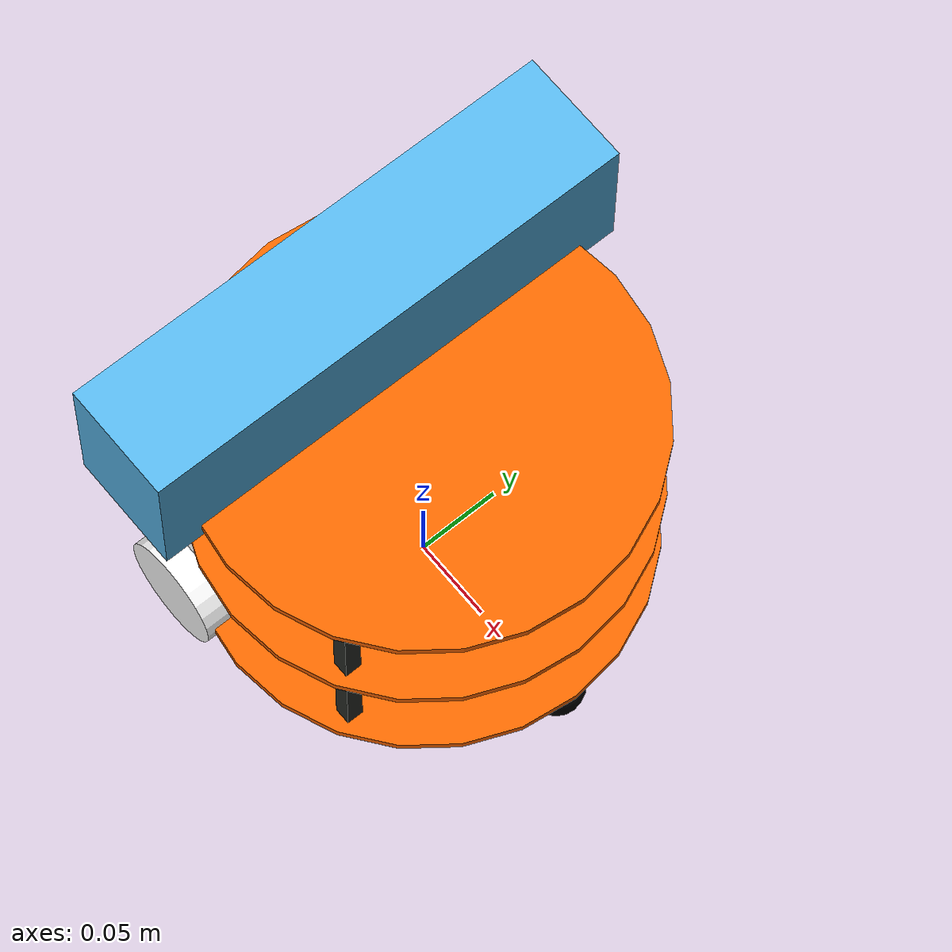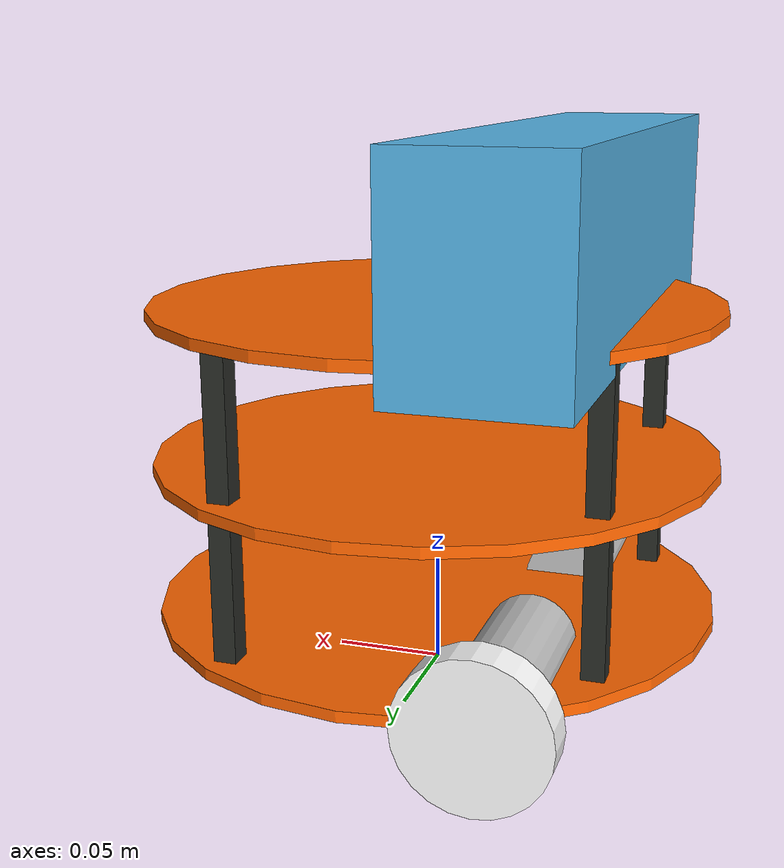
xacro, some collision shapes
<?xml version="1.0"?>
<robot name="mrobot" xmlns:xacro="http://www.ros.org/wiki/xacro">

    <xacro:include filename="$(find robot_urdf_demo)/urdf/mrobot_body.urdf.xacro" />
    <xacro:include filename="$(find robot_urdf_demo)/urdf/kinect.xacro" />

    <xacro:property name="kinect_offset_x" value="-0.06" />
    <xacro:property name="kinect_offset_y" value="0" />
    <xacro:property name="kinect_offset_z" value="0.035" />

    <xacro:property name="kinect_robot_name" value="kinect_camera" />

    <!-- MRobot机器人平台-->
    <xacro:mrobot_body/>

    <!-- Kinect -->
    <joint name="kinect_frame_joint" type="fixed">
        <origin xyz="${kinect_offset_x} ${kinect_offset_y} ${kinect_offset_z}" rpy="0 0 0" />
        <parent link="plate_2_link"/>
        <child link="${kinect_robot_name}_link"/>
    </joint>
    <xacro:kinect_camera prefix="${kinect_robot_name}"/>

</robot>

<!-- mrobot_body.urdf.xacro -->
<robot xmlns:xacro="http://www.ros.org/wiki/xacro">

    <xacro:property name="M_PI" value="3.14159"/>
    <xacro:property name="wheel_radius" value="0.033"/>
    <xacro:property name="wheel_length" value="0.017"/>
    <xacro:property name="base_link_radius" value="0.13"/>
    <xacro:property name="base_link_length" value="0.005"/>
    <xacro:property name="motor_radius" value="0.02"/>
    <xacro:property name="motor_length" value="0.08"/>
    <xacro:property name="motor_x" value="-0.055"/>
    <xacro:property name="motor_y" value="0.075"/>
    <xacro:property name="plate_height" value="0.07"/>
    <xacro:property name="standoff_x" value="0.12"/>
    <xacro:property name="standoff_y" value="0.10"/>

    <xacro:property name="joint_wheel_l" value="base_l_wheel_joint"/>
    <xacro:property name="joint_wheel_r" value="base_r_wheel_joint"/>

    <!-- 定义MRobot本体的宏 -->
    <xacro:macro name="mrobot_standoff_2in" params="parent number x_loc y_loc z_loc">
        <joint name="standoff_2in_${number}_joint" type="fixed">
            <origin xyz="${x_loc} ${y_loc} ${z_loc}" rpy="0 0 0" />
            <parent link="${parent}"/>
            <child link="standoff_2in_${number}_link" />
        </joint>

        <link name="standoff_2in_${number}_link">
            <inertial>
                <mass value="0.001" />
                <origin xyz="0 0 0" />
                <inertia ixx="0.0001" ixy="0.0" ixz="0.0"
                         iyy="0.0001" iyz="0.0"
                         izz="0.0001" />
            </inertial>

            <visual>
                <origin xyz=" 0 0 0 " rpy="0 0 0" />
                <geometry>
                    <box size="0.01 0.01 0.07" />
                </geometry>
                <material name="black">
                    <color rgba="0.16 0.17 0.15 0.9"/>
                </material>
            </visual>

            <collision>
                <origin xyz="0.0 0.0 0.0" rpy="0 0 0" />
                <geometry>
                    <box size="0.01 0.01 0.07" />
                </geometry>
            </collision>
        </link>
    </xacro:macro>

    <xacro:macro name="mrobot_body">
        <material name="Green">
            <color rgba="0.0 0.8 0.0 1.0"/>
        </material>
        <material name="yellow">
            <color rgba="1 0.4 0 1"/>
        </material>
        <material name="black">
            <color rgba="0 0 0 0.95"/>
        </material>
        <material name="gray">
            <color rgba="0.75 0.75 0.75 1"/>
        </material>

        <link name="base_footprint">
            <visual>
                <origin xyz="0 0 0" rpy="0 0 0" />
                <geometry>
                    <box size="0.001 0.001 0.001" />
                </geometry>
            </visual>
        </link>

        <link name="base_link">
            <inertial>
                <mass value="2" />
                <origin xyz="0 0 0.0" />
                <inertia ixx="0.01" ixy="0.0" ixz="0.0"
                         iyy="0.01" iyz="0.0" izz="0.5" />
            </inertial>

            <visual>
                <origin xyz=" 0 0 0" rpy="0 0 0" />
                <geometry>
                    <cylinder length="${base_link_length}" radius="${base_link_radius}"/>
                </geometry>
                <material name="yellow" />
            </visual>

            <collision>
                <origin xyz="0 0 0" rpy="0 0 0" />
                <geometry>
                    <cylinder length="${base_link_length}" radius="${base_link_radius}"/>
                </geometry>
            </collision>
        </link>

        <joint name="base_footprint_joint" type="fixed">
            <origin xyz="0 0 ${wheel_radius}" rpy="0 0 0" />
            <parent link="base_footprint"/>
            <child link="base_link" />
        </joint>

        <link name="left_motor">
            <inertial>
                <origin xyz="0.0 0 0"/>
                <mass value="0.1" />
                <inertia ixx="0.001" ixy="0.0" ixz="0.0"
                         iyy="0.001" iyz="0.0" izz="0.001" />
            </inertial>

            <visual>
                <origin xyz="0 0 0" rpy="${M_PI/2} 0 0" />
                <geometry>
                    <cylinder radius="${motor_radius}" length = "${motor_length}"/>
                </geometry>
                <material name="gray" />
            </visual>

            <collision>
                <origin xyz="0 0 0" rpy="${M_PI/2} 0 0" />
                <geometry>
                    <cylinder radius="${motor_radius}" length = "${motor_length}"/>
                </geometry>
            </collision>
        </link>

        <joint name="base_left_motor_joint" type="fixed">
            <origin xyz="${motor_x} ${motor_y} 0" rpy="0 0 0" />
            <parent link="base_link"/>
            <child link="left_motor" />
        </joint>

        <link name="left_wheel_link">
            <inertial>
                <origin xyz="0 0 0"/>
                <mass value="0.01" />
                <inertia ixx="0.001" ixy="0.0" ixz="0.0"
                         iyy="0.001" iyz="0.0" izz="0.001" />
            </inertial>

            <visual>
                <origin xyz="0 0 0" rpy="${M_PI/2} 0 0" />
                <geometry>
                    <cylinder radius="${wheel_radius}" length = "${wheel_length}"/>
                </geometry>
                <material name="white">
                    <color rgba="1 1 1 0.9"/>
                </material>
            </visual>

            <collision>
                <origin xyz="0 0 0" rpy="${M_PI/2} 0 0" />
                <geometry>
                    <cylinder radius="${wheel_radius}" length = "${wheel_length}"/>
                </geometry>
            </collision>
        </link>

        <joint name="${joint_wheel_l}" type="continuous">
            <origin xyz="0 ${(motor_length+wheel_length)/2} 0" rpy="0 0 0"/>
            <parent link="left_motor"/>
            <child link="left_wheel_link"/>
            <axis xyz="0 1 0"/>
        </joint>

        <link name="right_motor">
            <inertial>
                <origin xyz="0.0 0 0"/>
                <mass value="0.1" />
                <inertia ixx="0.001" ixy="0.0" ixz="0.0"
                         iyy="0.001" iyz="0.0" izz="0.001" />
            </inertial>

            <visual>
                <origin xyz="0 0 0" rpy="${M_PI/2} 0 0" />
                <geometry>
                    <cylinder radius="${motor_radius}" length = "${motor_length}" />
                </geometry>
                <material name="gray" />
            </visual>

            <collision>
                <origin xyz="0 0 0" rpy="${M_PI/2} 0 0" />
                <geometry>
                    <cylinder radius="${motor_radius}" length = "${motor_length}"/>
                </geometry>
            </collision>
        </link>

        <joint name="base_right_motor_joint" type="fixed">
            <origin xyz="${motor_x} -${motor_y} 0" rpy="0 0 0" />
            <parent link="base_link"/>
            <child link="right_motor" />
        </joint>

        <link name="right_wheel_link">
            <inertial>
                <origin xyz="0 0 0"/>
                <mass value="0.01" />
                <inertia ixx="0.001" ixy="0.0" ixz="0.0"
                         iyy="0.001" iyz="0.0" izz="0.001" />
            </inertial>

            <visual>
                <origin xyz="0 0 0" rpy="${M_PI/2} 0 0" />
                <geometry>
                    <cylinder radius="${wheel_radius}" length = "${wheel_length}"/>
                </geometry>
                <material name="white">
                    <color rgba="1 1 1 0.9"/>
                </material>
            </visual>

            <collision>
                <origin xyz="0 0 0" rpy="${M_PI/2} 0 0" />
                <geometry>
                    <cylinder radius="${wheel_radius}" length = "${wheel_length}"/>
                </geometry>
            </collision>
        </link>

        <joint name="${joint_wheel_r}" type="continuous">
            <origin xyz="0 -${(motor_length+wheel_length)/2} 0" rpy="0 0 0"/>
            <parent link="right_motor"/>
            <child link="right_wheel_link"/>
            <axis xyz="0 1 0"/>
        </joint>

        <link name="front_caster_link">
            <inertial>
                <origin xyz="0 0 0"/>
                <mass value="0.001" />
                <inertia ixx="0.0001" ixy="0.0" ixz="0.0"
                         iyy="0.0001" iyz="0.0" izz="0.0001" />
            </inertial>

            <visual>
                <origin xyz="0 0 0" rpy="${M_PI/2} 0 0"/>
                <geometry>
                    <sphere radius="${wheel_radius/2}" />
                </geometry>
                <material name="black" />
            </visual>

            <collision>
                <origin xyz="0 0 0.01" rpy="${M_PI/2} 0 0" />
                <geometry>
                    <sphere radius="${wheel_radius/2}" />
                </geometry>
            </collision>
        </link>

        <joint name="front_caster_joint" type="fixed">
            <origin xyz="${base_link_radius-wheel_radius/2} 0 -${wheel_radius/2}" rpy="0 0 0"/>
            <parent link="base_link"/>
            <child link="front_caster_link"/>
        </joint>

        <mrobot_standoff_2in parent="base_link" number="1" x_loc="-${standoff_x/2 + 0.03}" y_loc="-${standoff_y - 0.03}" z_loc="${plate_height/2}"/>
        <mrobot_standoff_2in parent="base_link" number="2" x_loc="-${standoff_x/2 + 0.03}" y_loc="${standoff_y - 0.03}" z_loc="${plate_height/2}"/>
        <mrobot_standoff_2in parent="base_link" number="3" x_loc="${standoff_x/2}" y_loc="-${standoff_y}" z_loc="${plate_height/2}"/>
        <mrobot_standoff_2in parent="base_link" number="4" x_loc="${standoff_x/2}" y_loc="${standoff_y}" z_loc="${plate_height/2}"/>

        <joint name="plate_1_joint" type="fixed">
            <origin xyz="0 0 ${plate_height}" rpy="0 0 0" />
            <parent link="base_link"/>
            <child link="plate_1_link" />
        </joint>

        <link name="plate_1_link">
            <inertial>
                <mass value="0.1" />
                <origin xyz="0 0 0" />
                <inertia ixx="0.01" ixy="0.0" ixz="0.0"
                         iyy="0.01" iyz="0.0" izz="0.01" />
            </inertial>

            <visual>
                <origin xyz=" 0 0 0 " rpy="0 0 0" />
                <geometry>
                    <cylinder length="${base_link_length}" radius="${base_link_radius}"/>
                </geometry>
                <material name="yellow"/>
            </visual>

            <collision>
                <origin xyz="0.0 0.0 0.0" rpy="0 0 0" />
                <geometry>
                    <cylinder length="${base_link_length}" radius="${base_link_radius}"/>
                </geometry>
            </collision>
        </link>

        <mrobot_standoff_2in parent="standoff_2in_1_link" number="5" x_loc="0" y_loc="0" z_loc="${plate_height}"/>
        <mrobot_standoff_2in parent="standoff_2in_2_link" number="6" x_loc="0" y_loc="0" z_loc="${plate_height}"/>
        <mrobot_standoff_2in parent="standoff_2in_3_link" number="7" x_loc="0" y_loc="0" z_loc="${plate_height}"/>
        <mrobot_standoff_2in parent="standoff_2in_4_link" number="8" x_loc="0" y_loc="0" z_loc="${plate_height}"/>

        <joint name="plate_2_joint" type="fixed">
            <origin xyz="0 0 ${plate_height}" rpy="0 0 0" />
            <parent link="plate_1_link"/>
            <child link="plate_2_link" />
        </joint>

        <link name="plate_2_link">
            <inertial>
                <mass value="0.01" />
                <origin xyz="0 0 0" />
                <inertia ixx="0.001" ixy="0.0" ixz="0.0"
                         iyy="0.001" iyz="0.0" izz="0.001" />
            </inertial>

            <visual>
                <origin xyz=" 0 0 0 " rpy="0 0 0" />
                <geometry>
                    <cylinder length="${base_link_length}" radius="${base_link_radius}"/>
                </geometry>
                <material name="yellow" />
            </visual>

            <collision>
                <origin xyz="0.0 0.0 0.0" rpy="0 0 0" />
                <geometry>
                    <cylinder length="${base_link_length}" radius="${base_link_radius}"/>
                </geometry>
            </collision>
        </link>

    </xacro:macro>

</robot>

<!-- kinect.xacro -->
<robot xmlns:xacro="http://www.ros.org/wiki/xacro" name="kinect_camera">

    <xacro:macro name="kinect_camera" params="prefix:=camera">
        <link name="${prefix}_link">
            <origin xyz="0 0 0" rpy="0 0 0"/>
            <visual>
                <origin xyz="0 0 0" rpy="0 0 ${M_PI/2}"/>
                <geometry>
                    <mesh filename="package://robot_urdf_demo/meshes/kinect.dae" />
                </geometry>
            </visual>
            <collision>
                <geometry>
                    <box size="0.07 0.3 0.09"/>
                </geometry>
            </collision>
        </link>

        <joint name="${prefix}_optical_joint" type="fixed">
            <origin xyz="0 0 0" rpy="-1.5708 0 -1.5708"/>
            <parent link="${prefix}_link"/>
            <child link="${prefix}_frame_optical"/>
        </joint>

        <link name="${prefix}_frame_optical"/>
    </xacro:macro>

</robot>
